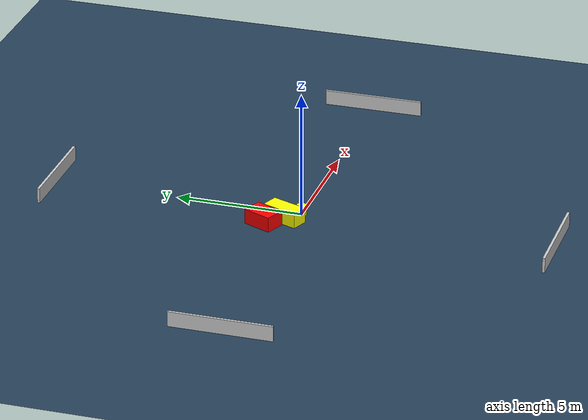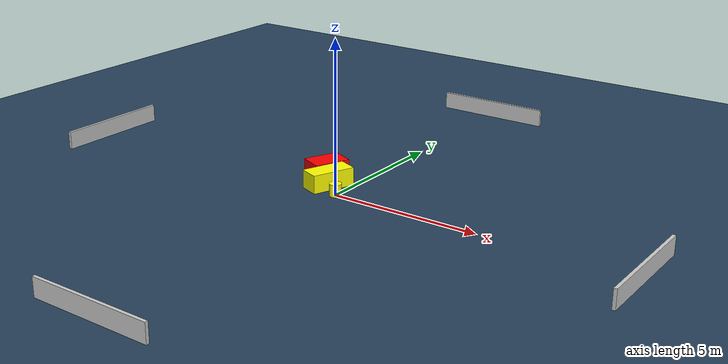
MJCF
<?xml version="1.0" ?>
<mujoco model="generated_environment">
  <option timestep="0.01" integrator="RK4" cone="elliptic"/>
  <default>
    <geom density="1"/>
  </default>
  <asset>
    <texture builtin="gradient" height="3072" name="skybox" rgb1="0.3 0.5 0.7" rgb2="0 0 0" type="skybox" width="512"/>
    <texture builtin="checker" height="300" name="groundplane" rgb1="0.2 0.3 0.4" rgb2="0.1 0.2 0.3" type="2d" width="300"/>
    <material name="groundplane" reflectance="0.2" texrepeat="5 5" texture="groundplane"/>
  </asset>
  <worldbody>
    <light dir="0 0 -1" directional="true" pos="0 0 1.5"/>
    <geom condim="3" friction="0.5 0.005 0.001" material="groundplane" name="floor" pos="0 0 0" size="0 0 0.05" type="plane"/>
    <body name="walls">
      <geom name="wall_1" condim="4" pos="-10.0 0.0 0.3" rgba="0.800000011920929 0.800000011920929 0.800000011920929 1.0" size="0.05 2.0 0.3" type="box"/>
      <geom name="wall_2" condim="4" pos="10.0 0.0 0.3" rgba="0.800000011920929 0.800000011920929 0.800000011920929 1.0" size="0.05 2.0 0.3" type="box"/>
      <geom name="wall_3" condim="4" pos="0.0 -10.0 0.3" rgba="0.800000011920929 0.800000011920929 0.800000011920929 1.0" size="2.0 0.05 0.3" type="box"/>
      <geom name="wall_4" condim="4" pos="0.0 10.0 0.3" rgba="0.800000011920929 0.800000011920929 0.800000011920929 1.0" size="2.0 0.05 0.3" type="box"/>
    </body>
    <body name="robot">
      <joint name="joint_x" type="slide" pos="0 0 0" axis="1 0 0"/>
      <joint name="joint_y" type="slide" pos="0 0 0" axis="0 1 0"/>
      <geom name="robot" type="cylinder" pos="0.0 0.0 0.2" size="0.2 0.2 0.0" mass="5.0" friction="1.0 0.005 0.0001" condim="4" rgba="1.0 1.0 0.0 1.0"/>
    </body>
    <body name="obstacle_1_movable">
      <geom name="obstacle_1_movable" condim="4" pos="-0.6390335603415215 0.4868694722927362 0.3" euler="0 0 248.79349843052222" friction="0.0 0.005 0.001" rgba="1.0 1.0 0.0 1.0" size="0.7354355627141238 0.3393987711683879 0.3" type="box" mass="0.1"/>
      <joint type="free"/>
    </body>
    <body name="obstacle_2_static">
      <geom name="obstacle_2_static" condim="4" pos="-1.2123549215088365 1.1565243650187702 0.3" euler="0 0 246.09378852025444" friction="0.0 0.005 0.001" rgba="1.0 0.0 0.0 1.0" size="0.5999104040536518 0.4010112185088144 0.3" type="box"/>
    </body>
  </worldbody>
  <actuator>
    <motor name="actuator_x" joint="joint_x" gear="1" ctrlrange="-1 1"/>
    <motor name="actuator_y" joint="joint_y" gear="1" ctrlrange="-1 1"/>
  </actuator>
</mujoco>
